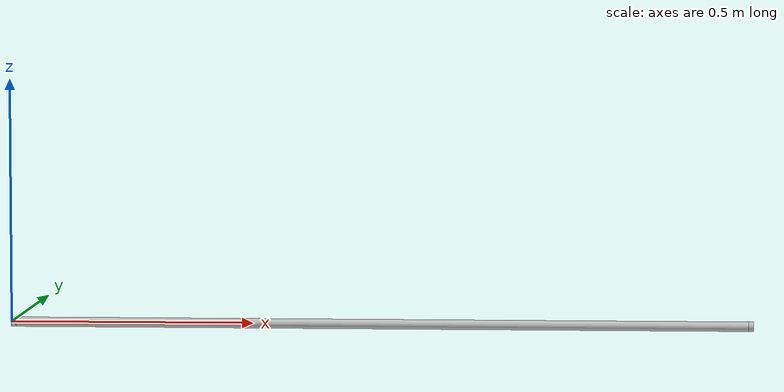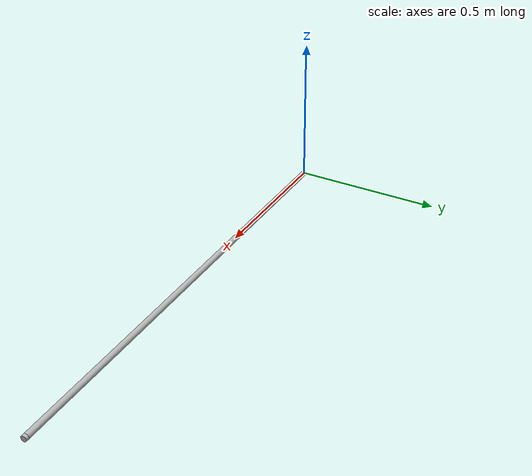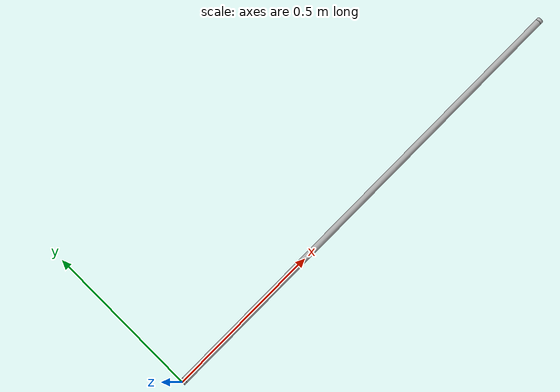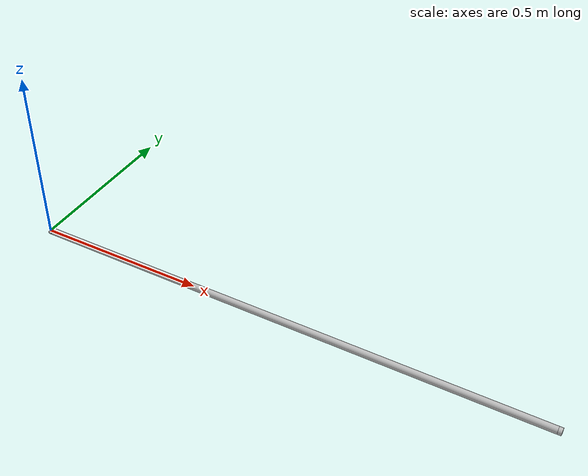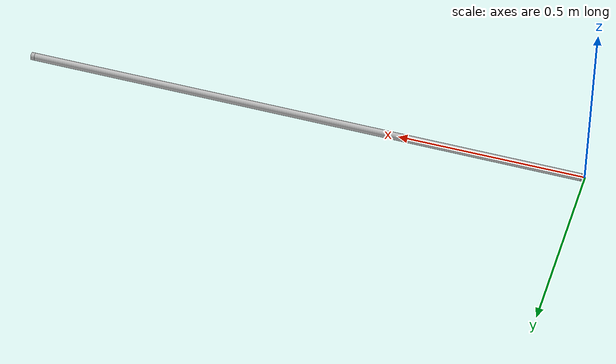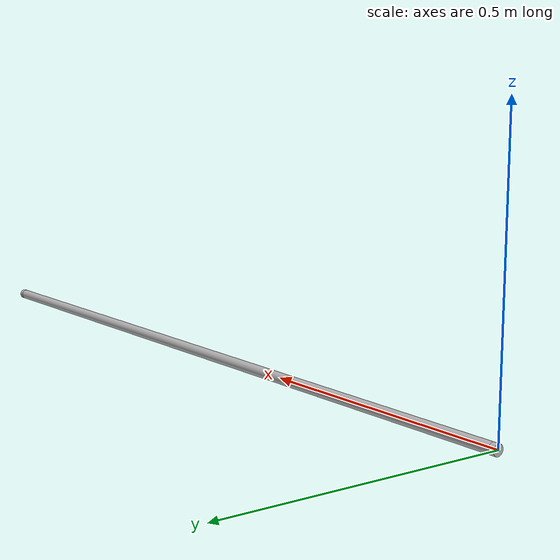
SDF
<sdf version='1.10'>
  <model name='tether'>
    <link name='element_0'>
      <inertial>
        <pose>0.0050000000000000001 0 0 0 1.5707963267948966 0</pose>
        <mass>0.00066666666666666675</mass>
        <inertia>
          <ixx>2.222222222222222e-08</ixx>
          <ixy>0</ixy>
          <ixz>0</ixz>
          <iyy>2.222222222222222e-08</iyy>
          <iyz>0</iyz>
          <izz>3.3333333333333341e-08</izz>
        </inertia>
      </inertial>
      <collision name='element_0_collision'>
        <pose>0.0050000000000000001 0 0 0 1.5707963267948966 0</pose>
        <geometry>
          <cylinder>
            <length>0.0001</length>
            <radius>0.0001</radius>
          </cylinder>
        </geometry>
      </collision>
      <visual name='element_0_visual'>
        <pose>0.0050000000000000001 0 0 0 1.5707963267948966 0</pose>
        <geometry>
          <cylinder>
            <length>0.01</length>
            <radius>0.01</radius>
          </cylinder>
        </geometry>
      </visual>
    </link>
    <joint name='joint_0_to_1' type='ball'>
      <pose relative_to='element_0'>0.01 0 0 0 0 0</pose>
      <parent>element_0</parent>
      <child>element_1</child>
      <axis>
        <xyz>0 1 1</xyz>
        <limit>
          <lower>-inf</lower>
          <upper>inf</upper>
        </limit>
        <dynamics>
          <spring_reference>0</spring_reference>
          <spring_stiffness>0</spring_stiffness>
        </dynamics>
      </axis>
    </joint>
    <link name='element_1'>
      <pose relative_to='joint_0_to_1'>0 0 0 0 0 0</pose>
      <inertial>
        <pose>0.75 0 0 0 1.5707963267948966 0</pose>
        <mass>0.10000000000000001</mass>
        <inertia>
          <ixx>0.018752499999999998</ixx>
          <ixy>0</ixy>
          <ixz>0</ixz>
          <iyy>0.018752499999999998</iyy>
          <iyz>0</iyz>
          <izz>5.0000000000000004e-06</izz>
        </inertia>
      </inertial>
      <collision name='element_1_collision'>
        <pose>0.75 0 0 0 1.5707963267948966 0</pose>
        <geometry>
          <cylinder>
            <length>0.0001</length>
            <radius>0.0001</radius>
          </cylinder>
        </geometry>
      </collision>
      <visual name='element_1_visual'>
        <pose>0.75 0 0 0 1.5707963267948966 0</pose>
        <geometry>
          <cylinder>
            <length>1.5</length>
            <radius>0.01</radius>
          </cylinder>
        </geometry>
      </visual>
    </link>
    <joint name='joint_1_to_2' type='ball'>
      <pose relative_to='element_1'>1.5 0 0 0 0 0</pose>
      <parent>element_1</parent>
      <child>element_2</child>
      <axis>
        <xyz>0 1 1</xyz>
        <limit>
          <lower>-inf</lower>
          <upper>inf</upper>
        </limit>
        <dynamics>
          <spring_reference>0</spring_reference>
          <spring_stiffness>0</spring_stiffness>
        </dynamics>
      </axis>
    </joint>
    <link name='element_2'>
      <pose relative_to='joint_1_to_2'>0 0 0 0 0 0</pose>
      <inertial>
        <pose>0.0050000000000000001 0 0 0 1.5707963267948966 0</pose>
        <mass>0.00066666666666666675</mass>
        <inertia>
          <ixx>2.222222222222222e-08</ixx>
          <ixy>0</ixy>
          <ixz>0</ixz>
          <iyy>2.222222222222222e-08</iyy>
          <iyz>0</iyz>
          <izz>3.3333333333333341e-08</izz>
        </inertia>
      </inertial>
      <collision name='element_2_collision'>
        <pose>0.0050000000000000001 0 0 0 1.5707963267948966 0</pose>
        <geometry>
          <cylinder>
            <length>0.0001</length>
            <radius>0.0001</radius>
          </cylinder>
        </geometry>
      </collision>
      <visual name='element_2_visual'>
        <pose>0.0050000000000000001 0 0 0 1.5707963267948966 0</pose>
        <geometry>
          <cylinder>
            <length>0.01</length>
            <radius>0.01</radius>
          </cylinder>
        </geometry>
      </visual>
    </link>
  </model>
</sdf>
